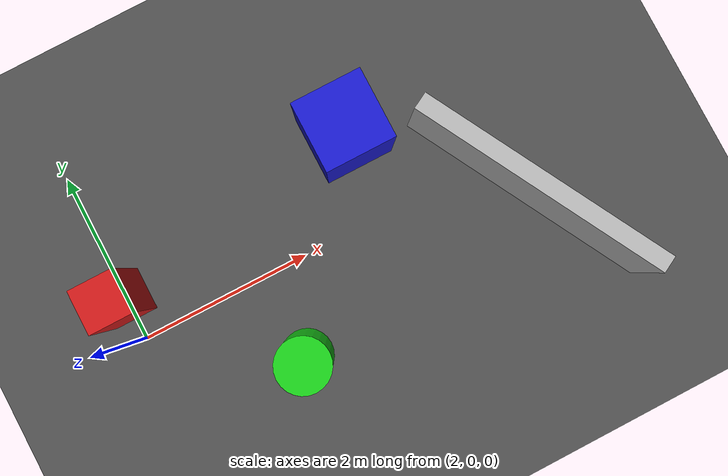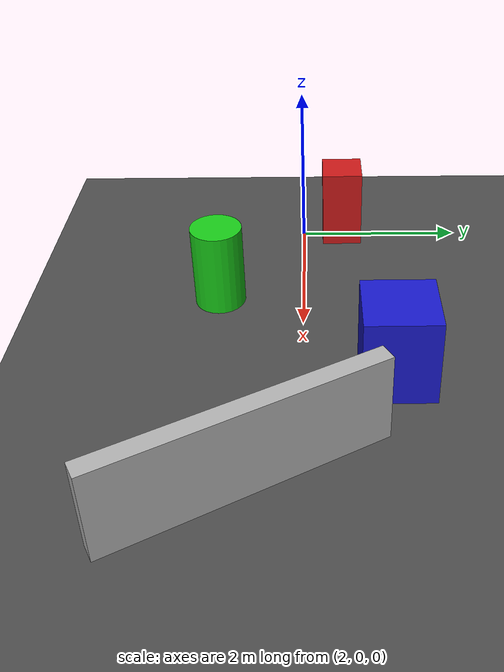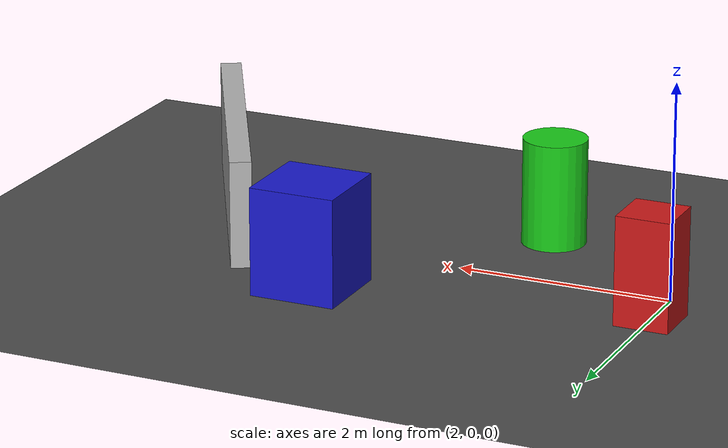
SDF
<?xml version="1.0" ?>
<sdf version="1.6">
  <world name="default">
    <!-- Scene settings for realistic sky, clouds, and ambient lighting -->
    <scene>
      <sky>
        <time>12.0</time>
        <clouds>
          <speed>12</speed>
          <humidity>0.6</humidity>
          <mean_size>0.6</mean_size>
          <ambient>0.8 0.8 0.8 1.0</ambient>
        </clouds>
      </sky>
      <ambient>0.5 0.5 0.5 1.0</ambient>
      <background>0.5 0.7 0.9 1.0</background>
      <shadows>true</shadows>
    </scene>

    <!-- A global light source -->
    <include>
      <uri>model://sun</uri>
    </include>

    <!-- A ground plane with road texture -->
    <model name="road_ground_plane">
      <static>true</static>
      <link name="link">
        <collision name="collision">
          <geometry>
            <plane>
              <normal>0 0 1</normal>
              <size>100 100</size>
            </plane>
          </geometry>
          <surface>
            <contact>
              <collide_bitmask>0xffff</collide_bitmask>
            </contact>
            <friction>
              <ode>
                <mu>100</mu>
                <mu2>50</mu2>
              </ode>
            </friction>
          </surface>
        </collision>
        <visual name="visual">
          <cast_shadows>false</cast_shadows>
          <geometry>
            <plane>
              <normal>0 0 1</normal>
              <size>100 100</size>
            </plane>
          </geometry>
          <material>
            <script>
              <uri>model://autonomous_car/media/materials/scripts/road.material</uri>
              <name>Road/Asphalt</name>
            </script>
          </material>
        </visual>
      </link>
    </model>

    <!-- Obstacle 1: Box -->
    <model name="box_obstacle_1">
      <static>true</static>
      <pose>2.0 0.5 0.5 0 0 0</pose>
      <link name="link">
        <collision name="collision">
          <geometry>
            <box>
              <size>0.5 0.5 1.0</size>
            </box>
          </geometry>
        </collision>
        <visual name="visual">
          <geometry>
            <box>
              <size>0.5 0.5 1.0</size>
            </box>
          </geometry>
          <material>
            <ambient>0.8 0.1 0.1 1</ambient>
            <diffuse>0.8 0.1 0.1 1</diffuse>
          </material>
        </visual>
      </link>
    </model>

    <!-- Obstacle 2: Cylinder -->
    <model name="cylinder_obstacle_2">
      <static>true</static>
      <pose>3.5 -1.0 0.5 0 0 0</pose>
      <link name="link">
        <collision name="collision">
          <geometry>
            <cylinder>
              <radius>0.3</radius>
              <length>1.0</length>
            </cylinder>
          </geometry>
        </collision>
        <visual name="visual">
          <geometry>
            <cylinder>
              <radius>0.3</radius>
              <length>1.0</length>
            </cylinder>
          </geometry>
          <material>
            <ambient>0.1 0.8 0.1 1</ambient>
            <diffuse>0.1 0.8 0.1 1</diffuse>
          </material>
        </visual>
      </link>
    </model>

    <!-- Obstacle 3: Box -->
    <model name="box_obstacle_3">
      <static>true</static>
      <pose>5.0 1.0 0.5 0 0 0</pose>
      <link name="link">
        <collision name="collision">
          <geometry>
            <box>
              <size>0.8 0.8 1.0</size>
            </box>
          </geometry>
        </collision>
        <visual name="visual">
          <geometry>
            <box>
              <size>0.8 0.8 1.0</size>
            </box>
          </geometry>
          <material>
            <ambient>0.1 0.1 0.8 1</ambient>
            <diffuse>0.1 0.1 0.8 1</diffuse>
          </material>
        </visual>
      </link>
    </model>

    <!-- Obstacle 4: Long Wall -->
    <model name="wall_obstacle_4">
      <static>true</static>
      <pose>6.5 -0.5 0.5 0 0 0.5</pose>
      <link name="link">
        <collision name="collision">
          <geometry>
            <box>
              <size>0.2 3.0 1.0</size>
            </box>
          </geometry>
        </collision>
        <visual name="visual">
          <geometry>
            <box>
              <size>0.2 3.0 1.0</size>
            </box>
          </geometry>
          <material>
            <ambient>0.7 0.7 0.7 1</ambient>
            <diffuse>0.7 0.7 0.7 1</diffuse>
          </material>
        </visual>
      </link>
    </model>

    <!-- Physics settings for faster or smoother simulation if needed -->
    <physics type="ode">
      <real_time_update_rate>1000.0</real_time_update_rate>
      <max_step_size>0.001</max_step_size>
      <real_time_factor>1.0</real_time_factor>
    </physics>
  </world>
</sdf>
